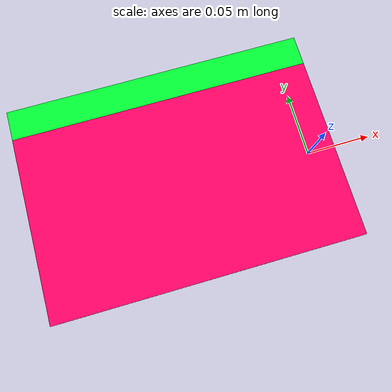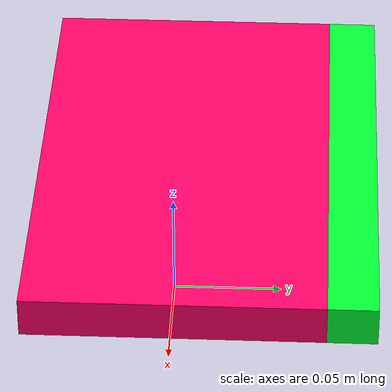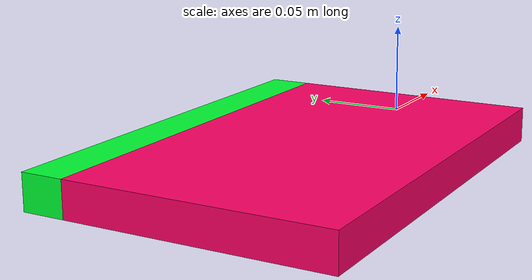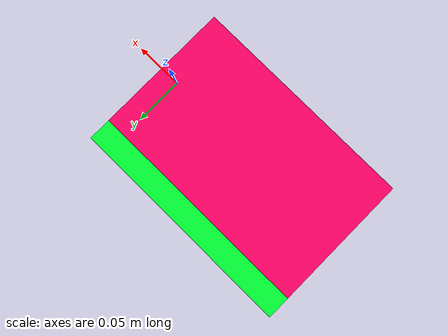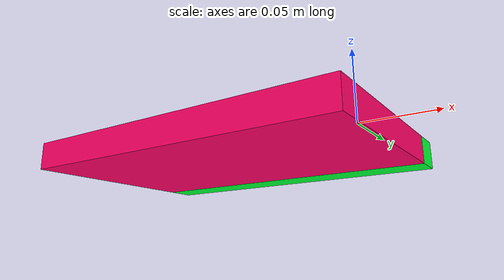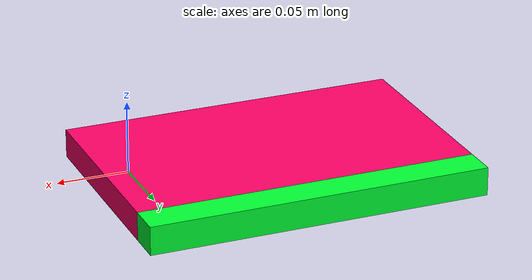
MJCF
<mujoco model="target_box">
    <worldbody>
        <body name="target_box" pos="0.0 0.0 0.0" quat="1 0 0 0">
        <geom name="target_box" pos="-0.1 0 -0.005" size="0.12 0.072 0.01" rgba="1 0 0.4 1.0" type="box" mass="0.01" friction="0.3 0.001 0.0001" priority="1" contype="0" conaffinity="0" />
         <geom name="target_box_b" pos="-0.1 0.084 -0.005" size="0.12 0.012 0.01" rgba="0 1 0.2 1.0" type="box" mass="0.01" friction="0.3 0.001 0.0001" priority="1" contype="0" conaffinity="0"/>

        </body>
    </worldbody>
</mujoco>
